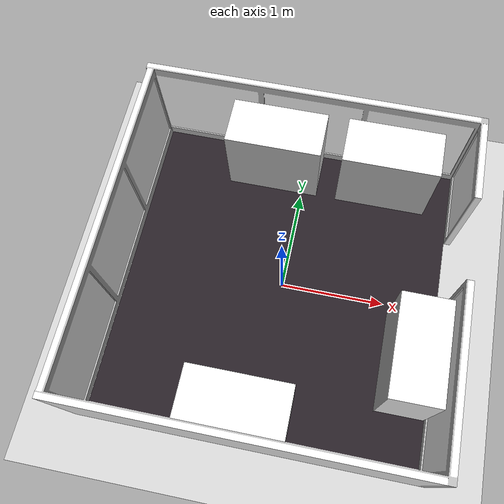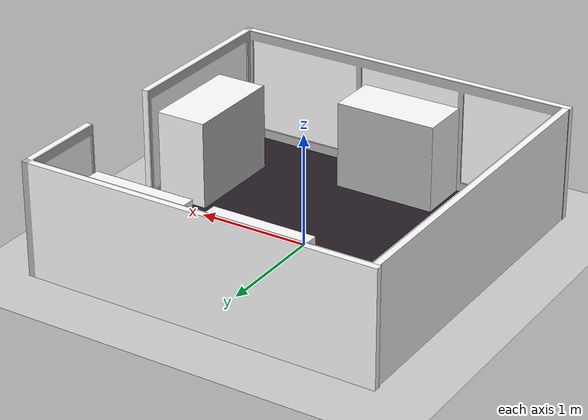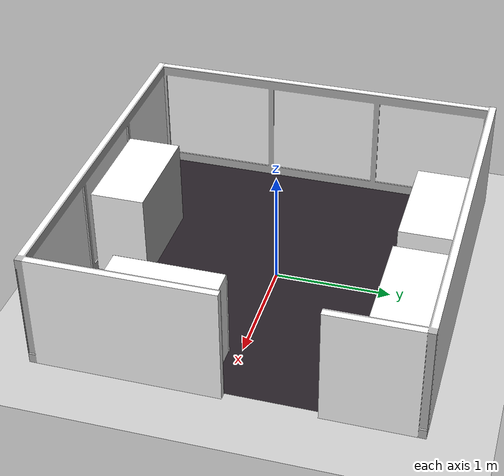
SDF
<?xml version="1.0" ?>
<sdf version="1.4">
  <world name="default">

    <include>
      <uri>model://ground_plane</uri>
      <pose>0 0 -0.005 0 0 0</pose>
    </include>

    <include>
      <uri>model://fetchit_arena</uri>
      <name>fetchit_arena1</name>
      <pose>0 0 0 0 0 0</pose>
    </include>

    <include>
      <uri>model://fetchit_table_em</uri>
      <name>fetchit_table_em1</name>
      <pose>1.28714 -0.565 0.0 0 0 -1.57</pose>
    </include>

    <include>
      <uri>model://fetchit_table_sick</uri>
      <name>fetchit_table_sick1</name>
      <pose>-0.305 1.28179 0.0 0 0 0</pose>
    </include>

    <include>
      <uri>model://fetchit_table_fetch</uri>
      <name>fetchit_table_fetch1</name>
      <pose>-0.135 -1.28849 0.0 0 0 3.1416</pose>
    </include>

    <include>
      <uri>model://fetchit_table_theconstruct</uri>
      <name>fetchit_table_theconstruct1</name>
      <pose>0.815 1.28179 0.0 0 0 0</pose>
    </include>

    <light name='user_point_light_0' type='point'>
      <pose frame=''>4.0 4.0 3.5 0 0 0</pose>
      <diffuse>0.7 0.7 0.7 1</diffuse>
      <specular>0.1 0.1 0.1 1</specular>
      <attenuation>
        <range>10</range>
        <constant>1.5</constant>
        <linear>0.01</linear>
        <quadratic>0.001</quadratic>
      </attenuation>
      <cast_shadows>0</cast_shadows>
      <direction>0 0 -1</direction>
    </light>

    <light name='user_point_light_1' type='point'>
      <pose frame=''>-4.0 4.0 3.5 0 0 0</pose>
      <diffuse>0.7 0.7 0.7 1</diffuse>
      <specular>0.1 0.1 0.1 1</specular>
      <attenuation>
        <range>10</range>
        <constant>1.5</constant>
        <linear>0.01</linear>
        <quadratic>0.001</quadratic>
      </attenuation>
      <cast_shadows>0</cast_shadows>
      <direction>0 0 -1</direction>
    </light>

    <light name='user_point_light_2' type='point'>
      <pose frame=''>-4.0 -4.0 3.5 0 0 0</pose>
      <diffuse>0.7 0.7 0.7 1</diffuse>
      <specular>0.1 0.1 0.1 1</specular>
      <attenuation>
        <range>10</range>
        <constant>1.5</constant>
        <linear>0.01</linear>
        <quadratic>0.001</quadratic>
      </attenuation>
      <cast_shadows>0</cast_shadows>
      <direction>0 0 -1</direction>
    </light>

    <light name='user_point_light_3' type='point'>
      <pose frame=''>4.0 -4.0 3.5 0 0 0</pose>
      <diffuse>0.7 0.7 0.7 1</diffuse>
      <specular>0.1 0.1 0.1 1</specular>
      <attenuation>
        <range>10</range>
        <constant>1.5</constant>
        <linear>0.01</linear>
        <quadratic>0.001</quadratic>
      </attenuation>
      <cast_shadows>0</cast_shadows>
      <direction>0 0 -1</direction>
    </light>

  </world>
</sdf>

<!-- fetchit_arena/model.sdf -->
<sdf version='1.4'>
  <model name="fetchit_simple_env">
      <static>1</static>
      <link name='link'>
        <visual name='visual'>
          <geometry>
            <mesh>
              <uri>model://fetchit_arena/meshes/fetchit_arena1.dae</uri>
              <scale>1 1 1</scale>
            </mesh>
          </geometry>
        </visual>
        <collision name='collision'>
          <geometry>
            <mesh>
              <uri>model://fetchit_arena/meshes/fetchit_arena1.dae</uri>
              <scale>1 1 1</scale>
            </mesh>
          </geometry>
          <surface>
            <friction>
              <ode>
                <mu>30.0</mu>
                <mu2>30.0</mu2>
              </ode>
            </friction>
            <contact>
              <ode>
                <soft_cfm>0</soft_cfm>
    	          <soft_erp>0.2</soft_erp>
    	          <kp>1e+13</kp>
    	          <kd>1</kd>
    	          <max_vel>0.01</max_vel>
    	          <min_depth>0</min_depth>
              </ode>
            </contact>
          </surface>
        </collision>
        <velocity_decay>
          <linear>0.000000</linear>
          <angular>0.000000</angular>
        </velocity_decay>
        <self_collide>0</self_collide>
        <kinematic>0</kinematic>
        <gravity>1</gravity>
      </link>
  </model>
</sdf>

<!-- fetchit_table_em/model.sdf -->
<sdf version='1.4'>
  <model name="fetchit_table_em">
      <static>1</static>
      <link name='link'>
        <inertial>
          <mass>0.0592855</mass>
          <inertia>
            <ixx>2.31818050784e-05</ixx>
            <ixy>0.000000</ixy>
            <ixz>0.000000</ixz>
            <iyy>2.31851837098e-05</iyy>
            <iyz>0.000000</iyz>
            <izz>8.88944636856e-06</izz>
          </inertia>
        </inertial>
        <collision name='collision'>
          <geometry>
            <mesh>
              <uri>model://fetchit_table_em/meshes/simple_table.stl</uri>
              <scale>1 1 1</scale>
            </mesh>
          </geometry>
          <surface>
            <friction>
              <ode>
                <mu>30.0</mu>
                <mu2>30.0</mu2>
              </ode>
            </friction>
          </surface>
        </collision>
        <visual name='visual'>
          <geometry>
            <mesh>
              <uri>model://fetchit_table_em/meshes/table_EM.dae</uri>
              <scale>1 1 1</scale>
            </mesh>
          </geometry>
        </visual>
        <velocity_decay>
          <linear>0.000000</linear>
          <angular>0.000000</angular>
        </velocity_decay>
        <self_collide>0</self_collide>
        <kinematic>0</kinematic>
        <gravity>1</gravity>
      </link>
  </model>
</sdf>

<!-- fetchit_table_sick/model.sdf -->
<sdf version='1.4'>
  <model name="fetchit_table_sick">
      <static>1</static>
      <link name='link'>
        <inertial>
          <mass>0.0592855</mass>
          <inertia>
            <ixx>2.31818050784e-05</ixx>
            <ixy>0.000000</ixy>
            <ixz>0.000000</ixz>
            <iyy>2.31851837098e-05</iyy>
            <iyz>0.000000</iyz>
            <izz>8.88944636856e-06</izz>
          </inertia>
        </inertial>
        <collision name='collision'>
          <geometry>
            <mesh>
              <uri>model://fetchit_table_sick/meshes/simple_table.stl</uri>
              <scale>1 1 1</scale>
            </mesh>
          </geometry>
          <surface>
            <friction>
              <ode>
                <mu>30.0</mu>
                <mu2>30.0</mu2>
              </ode>
            </friction>
          </surface>
        </collision>
        <visual name='visual'>
          <geometry>
            <mesh>
              <uri>model://fetchit_table_sick/meshes/table_sick.dae</uri>
              <scale>1 1 1</scale>
            </mesh>
          </geometry>
        </visual>
        <velocity_decay>
          <linear>0.000000</linear>
          <angular>0.000000</angular>
        </velocity_decay>
        <self_collide>0</self_collide>
        <kinematic>0</kinematic>
        <gravity>1</gravity>
      </link>
  </model>
</sdf>

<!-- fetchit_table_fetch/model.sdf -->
<sdf version='1.4'>
  <model name="fetchit_table_fetch">
      <static>1</static>
      <link name='link'>
        <inertial>
          <mass>0.0592855</mass>
          <inertia>
            <ixx>2.31818050784e-05</ixx>
            <ixy>0.000000</ixy>
            <ixz>0.000000</ixz>
            <iyy>2.31851837098e-05</iyy>
            <iyz>0.000000</iyz>
            <izz>8.88944636856e-06</izz>
          </inertia>
        </inertial>
        <collision name='collision'>
          <geometry>
            <mesh>
              <uri>model://fetchit_table_fetch/meshes/simple_table.stl</uri>
              <scale>1 1 1</scale>
            </mesh>
          </geometry>
          <surface>
            <friction>
              <ode>
                <mu>30.0</mu>
                <mu2>30.0</mu2>
              </ode>
            </friction>
          </surface>
        </collision>
        <visual name='visual'>
          <geometry>
            <mesh>
              <uri>model://fetchit_table_fetch/meshes/table_fetch.dae</uri>
              <scale>1 1 1</scale>
            </mesh>
          </geometry>
        </visual>
        <velocity_decay>
          <linear>0.000000</linear>
          <angular>0.000000</angular>
        </velocity_decay>
        <self_collide>0</self_collide>
        <kinematic>0</kinematic>
        <gravity>1</gravity>
      </link>
  </model>
</sdf>

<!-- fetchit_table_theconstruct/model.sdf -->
<sdf version='1.4'>
  <model name="fetchit_table_theconstruct">
      <static>1</static>
      <link name='link'>
        <inertial>
          <mass>0.0592855</mass>
          <inertia>
            <ixx>2.31818050784e-05</ixx>
            <ixy>0.000000</ixy>
            <ixz>0.000000</ixz>
            <iyy>2.31851837098e-05</iyy>
            <iyz>0.000000</iyz>
            <izz>8.88944636856e-06</izz>
          </inertia>
        </inertial>
        <collision name='collision'>
          <geometry>
            <mesh>
              <uri>model://fetchit_table_theconstruct/meshes/simple_table.stl</uri>
              <scale>1 1 1</scale>
            </mesh>
          </geometry>
          <surface>
            <friction>
              <ode>
                <mu>30.0</mu>
                <mu2>30.0</mu2>
              </ode>
            </friction>
          </surface>
        </collision>
        <visual name='visual'>
          <geometry>
            <mesh>
              <uri>model://fetchit_table_theconstruct/meshes/table_theconstruct.dae</uri>
              <scale>1 1 1</scale>
            </mesh>
          </geometry>
        </visual>
        <velocity_decay>
          <linear>0.000000</linear>
          <angular>0.000000</angular>
        </velocity_decay>
        <self_collide>0</self_collide>
        <kinematic>0</kinematic>
        <gravity>1</gravity>
      </link>
  </model>
</sdf>
